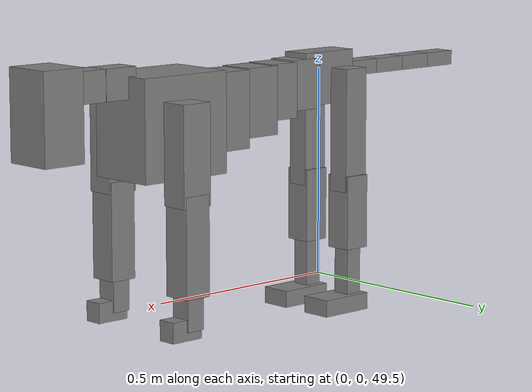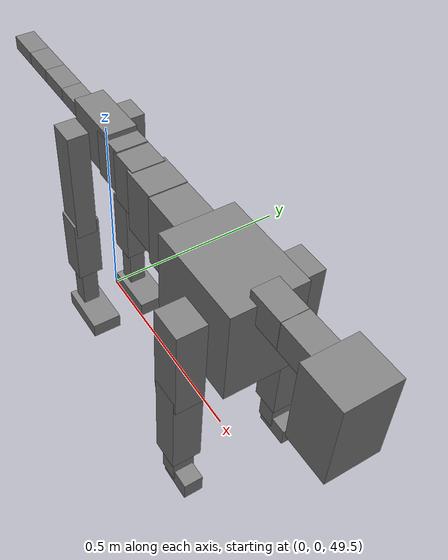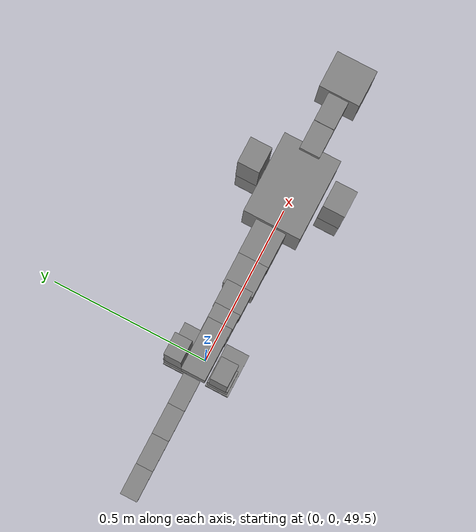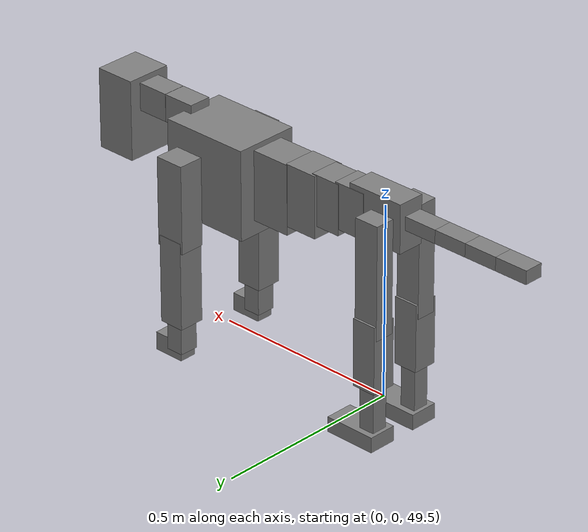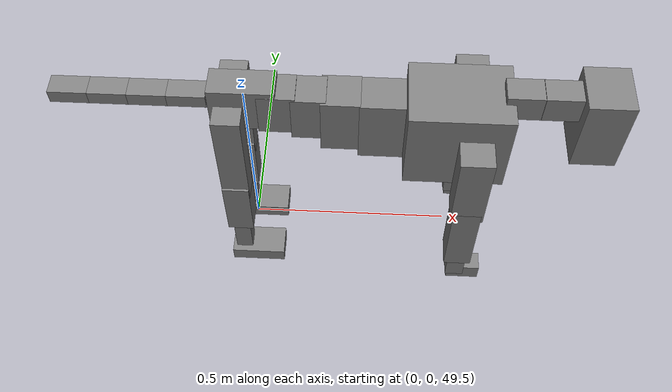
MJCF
<mujoco model="dog">

    <default>
        <joint armature="0.02" stiffness="1" damping="0.2" limited="true"/>
        <geom condim="3" friction="1 0.05 0.05" margin="0.01"/>
        <motor ctrllimited="true" ctrlrange="-1.0 1.0" forcelimited="true" gear="50"/>
    </default>

    <compiler inertiafromgeom="true" angle="radian"/>

    <option timestep="0.016" iterations="50" tolerance="1e-10" solver="Newton" jacobian="dense" cone="pyramidal"/>

    <size nconmax="20000" njmax="60000" nstack="5000000"/>
    <visual>
        <map force="0.1" zfar="30"/>
        <rgba haze="0.15 0.25 0.35 1"/>
        <quality shadowsize="2048"/>
        <global offwidth="800" offheight="800"/>
    </visual>

    <asset>
        <texture type="skybox" builtin="gradient" rgb1="0.3 0.5 0.7" rgb2="0 0 0" width="512" height="512"/>
        <texture name="texplane" type="2d" builtin="checker" rgb1=".2 .3 .4" rgb2=".1 0.15 0.2" width="512" height="512"
                 mark="cross" markrgb=".8 .8 .8"/>
        <texture name="texgeom" type="cube" builtin="flat" mark="cross" width="127" height="1278" rgb1="0.8 0.6 0.4"
                 rgb2="0.8 0.6 0.4" markrgb="1 1 1" random="0.01"/>

        <material name="matplane" reflectance="0.3" texture="texplane" texrepeat="1 1" texuniform="true"/>
        <material name="matgeom" texture="texgeom" texuniform="true" rgba="0.8 0.6 .4 1"/>
    </asset>

    <worldbody>
        <geom name="floor" pos="0 0 0" size="0 0 .25" type="plane" material="matplane" condim="3"/>

        <light directional="false" diffuse=".2 .2 .2" specular="0 0 0" pos="0 0 5" dir="0 0 -1" castshadow="false"/>
        <light mode="targetbodycom" target="torso" directional="false" diffuse=".8 .8 .8" specular="0.3 0.3 0.3"
               pos="0 0 4.0" dir="0 0 -1"/>

        <body name="root" pos="0 0 50">
            <freejoint name="root_1"/>
            <geom type="box" pos="0 0 -0.02" size="0.0774  0.0358  0.063" density="2030"/>

            <body name="spine1" pos="0.054 0 0">
                <joint name="spine1_y" axis="0 1 0" range="0 0.7" limited="true"/>
                <geom type="box" pos="0.02375 0 -0.03" size="0.04375  0.0375  0.05985" density="2030"/>

                <body name="spine2" pos="0.0612 0 0">
                    <joint name="spine2_y" axis="0 1 0" range="-0.15 0.15" limited="true"/>
                    <geom type="box" pos="0.03555  0  -0.04" size="0.04055  0.039  0.06615" density="2030"/>

                    <body name="spine3" pos="0.0730 0 0">
                        <joint name="spine3_y" axis="0 1 0" range="-0.15 0.15" limited="true"/>
                        <geom type="box" pos="0.03555  0  -0.057" size="0.04555  0.0445  0.081" density="2030"/>

                        <body name="spine4" pos="0.0780 0 0">
                            <joint name="spine4_y" axis="0 1 0" range="-0.15 0.15" limited="true"/>
                            <geom type="box" pos="0.05265  0  -0.07" size="0.05265  0.045  0.09135" density="2030"/>

                            <body name="torso" pos="0.1082 0 0">
                                <joint name="torso_y" axis="0 1 0" range="-0.15 0.15" limited="true"/>
                                <geom type="box" pos="0.11925  0  -0.085" size="0.11925  0.085  0.11745"
                                      density="2030"/>

                                <body name="neck1" pos="0.2160  0   0.0180">
                                    <joint name="neck1_y" axis="0 1 0" range="-1.2  -1" limited="true"/>
                                    <geom type="box" pos="0.0423  0  0" size="0.0423  0.03  0.036" density="2325"/>

                                    <body name="neck2" pos="0.0853  0  0">
                                        <joint name="neck2_y" axis="0 1 0" range="0.1  0" limited="true"/>
                                        <geom type="box" pos="0.0423  0  0" size="0.0423  0.03  0.036" density="2325"/>

                                        <body name="head" pos="0.0853  0  0">
                                            <joint name="head_y" axis="0 1 0" range="-0.3  -0.2" limited="true"/>
                                            <geom type="box" pos="0.0531  0  -0.055" size="0.0531  0.06  0.1044"
                                                  density="4030"/>

                                        </body>
                                    </body>
                                </body>

                                <body name="front_shoulder" pos="0.156  0   -0.0480">
                                    <joint name="front_shoulder_y" axis="0 1 0" range="-1 1.5" limited="true"/>
                                    <geom type="box" pos="0 0.13 -0.0886" size="0.0388  0.0331  0.1153" density="1158"/>
                                    <geom type="box" pos="0 -0.13 -0.0886" size="0.0388  0.0331  0.1153"
                                          density="1158"/>

                                    <body name="front_elbow" pos="0  0  -0.1772">
                                        <joint name="front_elbow_y" axis="0 1 0" range="-2 0" limited="true"/>
                                        <geom type="box" pos="0 0.13 -0.1153" size="0.0335  0.0342  0.1153"
                                              density="1081"/>
                                        <geom type="box" pos="0 -0.13 -0.1153" size="0.0335  0.0342  0.1153"
                                              density="1081"/>

                                        <body name="front_wrist" pos="0  0  -0.2307">
                                            <joint name="front_wrist_y" axis="0 1 0" range="-0.2 0" limited="true"/>
                                            <geom type="box" pos="0 0.13 -0.0310" size="0.0228  0.0253  0.0441"
                                                  density="1664"/>
                                            <geom type="box" pos="0 -0.13 -0.0310" size="0.0228  0.0253  0.0441"
                                                  density="1664"/>

                                            <body name="front_finger_end" pos="0  0  -0.0620">
                                                <joint name="front_finger_y" axis="0 1 0" range="-0.4 1"
                                                       limited="true"/>
                                                <geom type="box" pos="0.0225  0.13  -0.0087"
                                                      size="0.0412  0.0225  0.0237" density="1515"/>
                                                <geom type="box" pos="0.0225  -0.13  -0.0087"
                                                      size="0.0412  0.0225  0.0237" density="1515"/>

                                            </body>

                                        </body>
                                    </body>
                                </body>

                            </body>
                        </body>
                    </body>
                </body>
            </body>

            <body name="back_hip" pos="-0.03 0 -0.018">
                <joint name="back_hip_y" axis="0 1 0" range="-1.5 0.3" limited="true"/>
                <geom type="box" pos="0 0.07 -0.1251" size="0.0333  0.0261  0.1479" density="1154"/>
                <geom type="box" pos="0 -0.07 -0.1251" size="0.0333  0.0261  0.1479" density="1154"/>

                <body name="back_knee" pos="0  0  -0.2501">
                    <joint name="back_knee_y" axis="0 1 0" range="0 2.8" limited="true"/>
                    <geom type="box" pos="0 0.07 -0.0728" size="0.0326  0.0321  0.0884" density="1227"/>
                    <geom type="box" pos="0 -0.07 -0.0728" size="0.0326  0.0321  0.0884" density="1227"/>

                    <body name="back_ankle" pos="0  0  -0.1456">
                        <joint name="back_ankle_y" axis="0 1 0" range="-2.2 0" limited="true"/>
                        <geom type="box" pos="0 0.07 -0.0712" size="0.0213  0.0213  0.0825" density="1284"/>
                        <geom type="box" pos="0 -0.07 -0.0712" size="0.0213  0.0213  0.0825" density="1284"/>

                        <body name="back_toe_end" pos="0  0  -0.1425">
                            <joint name="back_toe_y" axis="0 1 0" range="-0.4 1" limited="true"/>
                            <geom type="box" pos="0.0375  0.07  -0.0051" size="0.0688  0.0375  0.0201" density="1515"/>
                            <geom type="box" pos="0.0375  -0.07  -0.0051" size="0.0688  0.0375  0.0201" density="1515"/>

                        </body>
                    </body>
                </body>
            </body>

            <body name="tail1" pos="-0.074 0 -0.006">
                <joint name="tail1_y" axis="0 1 0" range="-0.2 0.2" limited="true"/>
                <geom type="box" pos="-0.0536  0  0" size="0.045  0.025  0.0175" density="1587"/>

                <body name="tail2" pos="-0.09 0 0">
                    <joint name="tail2_y" axis="0 1 0" range="-0.2 0.2" limited="true"/>
                    <geom type="box" pos="-0.0536  0  0" size="0.045  0.025  0.0175" density="1587"/>

                    <body name="tail3" pos="-0.09 0 0">
                        <joint name="tail3_y" axis="0 1 0" range="-0.2 0.2" limited="true"/>
                        <geom type="box" pos="-0.0536  0  0" size="0.045  0.025  0.0175" density="1587"/>

                        <body name="tail4" pos="-0.09 0 0">
                            <joint name="tail4_y" axis="0 1 0" range="-0.2 0.2" limited="true"/>
                            <geom type="box" pos="-0.0536  0  0" size="0.045  0.025  0.0175" density="1587"/>

                        </body>
                    </body>
                </body>
            </body>
        </body>
    </worldbody>

    <actuator>
        <motor joint="spine1_y" forcerange="-150 150     "/>
        <motor joint="spine2_y" forcerange="-150 150     "/>
        <motor joint="spine3_y" forcerange="-150 150     "/>
        <motor joint="spine4_y" forcerange="-150 150     "/>
        <motor joint="torso_y" forcerange="-150 150     "/>
        <motor joint="neck1_y" forcerange="-100 100       "/>
        <motor joint="neck2_y" forcerange="-100 100       "/>
        <motor joint="head_y" forcerange="-150 150       "/>
        <motor joint="front_shoulder_y" forcerange="-184.66 136.17"/>
        <motor joint="front_elbow_y" forcerange="-175.41 173.63"/>
        <motor joint="front_wrist_y" forcerange="-95.13 107.28"/>
        <motor joint="front_finger_y" forcerange="-36.52 43.30"/>
        <motor joint="back_hip_y" forcerange="-208.40 339.60"/>
        <motor joint="back_knee_y" forcerange="-341.02 326.19"/>
        <motor joint="back_angle_y" forcerange="-99.02 141.39"/>
        <motor joint="back_toe_y" forcerange="-121.60 98.62"/>
        <motor joint="tail1_y" forcerange="-50 50     "/>
        <motor joint="tail2_y" forcerange="-50 50     "/>
        <motor joint="tail3_y" forcerange="-50 50     "/>
        <motor joint="tail4_y" forcerange="-50 50     "/>
    </actuator>
</mujoco>
